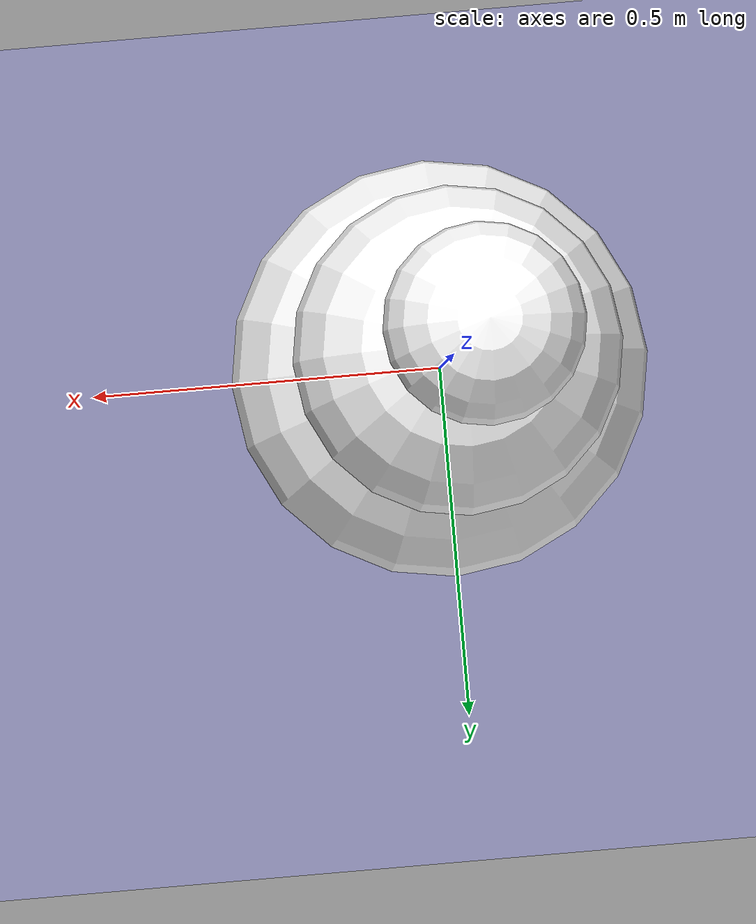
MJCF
<mujoco>
    <worldbody>
        <geom type="plane" size="2 2 0.1" rgba="0.5 0.5 1 1"/>
        <body name="snowman" pos="0 0 0">

            <freejoint/>
            <!-- Snowman's body parts -->
            <geom type="sphere" size="0.3" pos="0 0 0" rgba="1 1 1 1"/>
            <geom type="sphere" size="0.2" pos="0 0 0.6" rgba="1 1 1 1"/>
            <geom type="sphere" size="0.1" pos="0 0 1.2" rgba="1 1 1 1"/>
        </body>
    </worldbody>
</mujoco>
